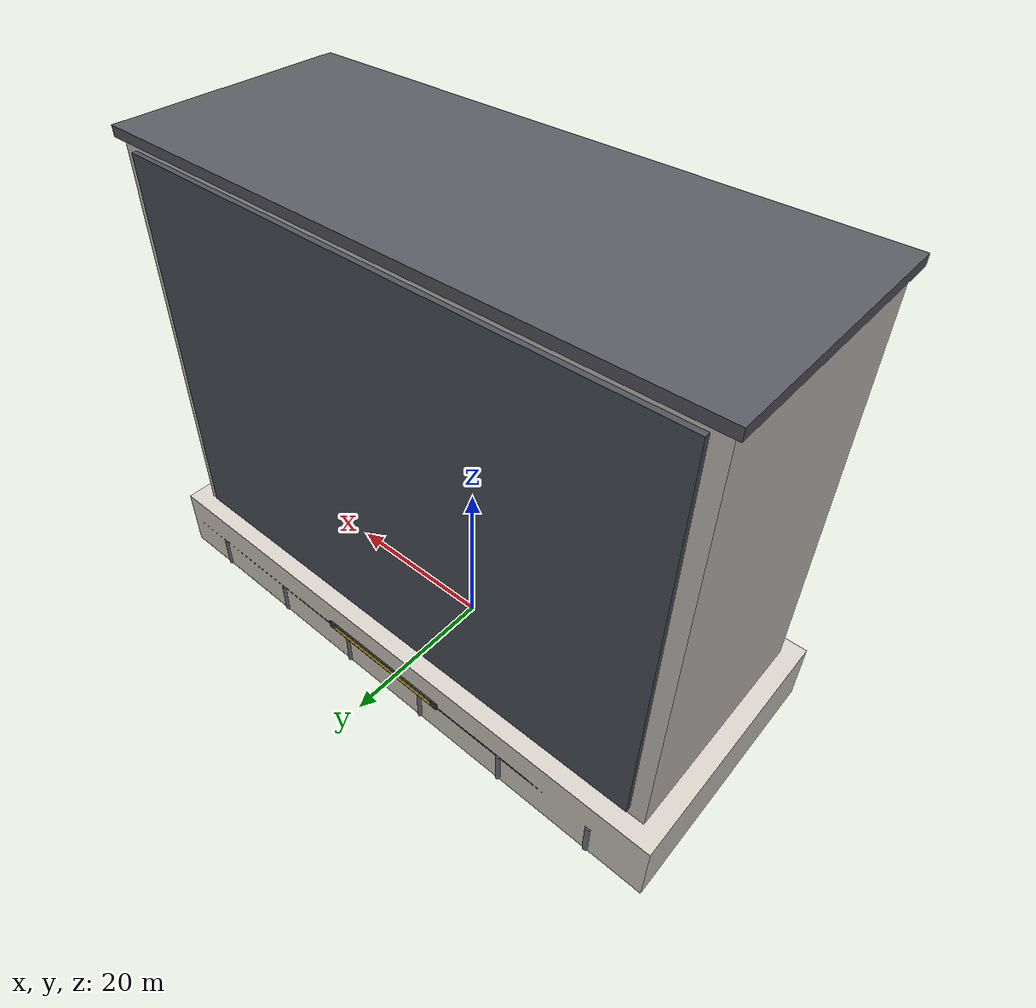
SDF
<?xml version="1.0" ?>
<sdf version="1.8">
  <model name="moon_shadow_building">
    <static>true</static>
    <link name="moon_shadow_link">

      <!-- Collisions -->
      <collision name="podium_col">
        <pose>0 0 4.0 0 0 0</pose>
        <geometry><box><size>74.0 32.0 8.0</size></box></geometry>
      </collision>
      <collision name="tower_col">
        <pose>0 0 33.0 0 0 0</pose>
        <geometry><box><size>70.0 28.0 50.0</size></box></geometry>
      </collision>

      <!-- 1F~2F 崗石大廳基座與商鋪 (Luxury Stone Podium) -->
      <visual name="podium_vis">
        <pose>0 0 4.0 0 0 0</pose>
        <geometry><box><size>74.0 32.0 8.0</size></box></geometry>
        <material>
          <ambient>0.78 0.76 0.72 1</ambient>
          <diffuse>0.84 0.82 0.78 1</diffuse>
        </material>
      </visual>

      <!-- 1F 挑高深凹連續騎樓 (Arcade facing Guanxin Rd: Y = +16m) -->
      <visual name="arcade_floor">
        <pose>0 14.2 0.08 0 0 0</pose>
        <geometry><box><size>72.0 3.6 0.02</size></box></geometry>
        <material><ambient>0.65 0.62 0.60 1</ambient><diffuse>0.72 0.70 0.68 1</diffuse></material>
      </visual>
      <visual name="arcade_ceiling">
        <pose>0 14.2 4.2 0 0 0</pose>
        <geometry><box><size>72.0 3.6 0.25</size></box></geometry>
        <material><ambient>0.28 0.28 0.30 1</ambient><diffuse>0.32 0.32 0.35 1</diffuse></material>
      </visual>

      <!-- 騎樓結構大圓柱列 (沿關新路: 6 根大圓柱) -->
      <visual name="col_1"><pose>-30.0 15.8 2.1 0 0 0</pose><geometry><cylinder><radius>0.4</radius><length>4.2</length></cylinder></geometry><material><ambient>0.38 0.4 0.42 1</ambient><diffuse>0.45 0.48 0.50 1</diffuse></material></visual>
      <visual name="col_2"><pose>-18.0 15.8 2.1 0 0 0</pose><geometry><cylinder><radius>0.4</radius><length>4.2</length></cylinder></geometry><material><ambient>0.38 0.4 0.42 1</ambient><diffuse>0.45 0.48 0.50 1</diffuse></material></visual>
      <visual name="col_3"><pose>-6.0 15.8 2.1 0 0 0</pose><geometry><cylinder><radius>0.4</radius><length>4.2</length></cylinder></geometry><material><ambient>0.38 0.4 0.42 1</ambient><diffuse>0.45 0.48 0.50 1</diffuse></material></visual>
      <visual name="col_4"><pose>6.0 15.8 2.1 0 0 0</pose><geometry><cylinder><radius>0.4</radius><length>4.2</length></cylinder></geometry><material><ambient>0.38 0.4 0.42 1</ambient><diffuse>0.45 0.48 0.50 1</diffuse></material></visual>
      <visual name="col_5"><pose>18.0 15.8 2.1 0 0 0</pose><geometry><cylinder><radius>0.4</radius><length>4.2</length></cylinder></geometry><material><ambient>0.38 0.4 0.42 1</ambient><diffuse>0.45 0.48 0.50 1</diffuse></material></visual>
      <visual name="col_6"><pose>30.0 15.8 2.1 0 0 0</pose><geometry><cylinder><radius>0.4</radius><length>4.2</length></cylinder></geometry><material><ambient>0.38 0.4 0.42 1</ambient><diffuse>0.45 0.48 0.50 1</diffuse></material></visual>

      <!-- 挑高迎賓大廳正門 (Grand Lobby Entrance Portal) -->
      <visual name="lobby_glass">
        <pose>0 12.4 3.0 0 0 0</pose>
        <geometry><box><size>70.0 0.1 5.8</size></box></geometry>
        <material><ambient>0.15 0.25 0.35 0.85</ambient><diffuse>0.20 0.35 0.45 0.85</diffuse><specular>0.9 0.95 1 1</specular></material>
      </visual>
      <!-- 金色社區標誌牌「月影國際會館 MOON SHADOW」 -->
      <visual name="sign_board">
        <pose>0 16.1 4.5 0 0 0</pose>
        <geometry><box><size>18.0 0.2 0.9</size></box></geometry>
        <material><ambient>0.2 0.2 0.22 1</ambient><diffuse>0.25 0.25 0.28 1</diffuse></material>
      </visual>
      <visual name="sign_letters">
        <pose>0 16.22 4.5 0 0 0</pose>
        <geometry><box><size>16.0 0.05 0.6</size></box></geometry>
        <material><ambient>0.85 0.72 0.15 1</ambient><diffuse>0.95 0.80 0.18 1</diffuse><emissive>0.3 0.25 0.05 1</emissive></material>
      </visual>

      <!-- 3F~18F 塔樓主體 (Tower Body: 18F, 58m) -->
      <visual name="tower_body_vis">
        <pose>0 0 33.0 0 0 0</pose>
        <geometry><box><size>69.6 27.6 50.0</size></box></geometry>
        <material>
          <ambient>0.74 0.72 0.70 1</ambient>
          <diffuse>0.80 0.78 0.76 1</diffuse>
        </material>
      </visual>

      <!-- 東向面向關新路之大景觀陽台 (Balconies facing Guanxin Rd) -->
      <visual name="front_balconies_vis">
        <pose>0 14.1 33.0 0 0 0</pose>
        <geometry><box><size>66.0 0.6 48.0</size></box></geometry>
        <material><ambient>0.26 0.28 0.30 1</ambient><diffuse>0.30 0.32 0.35 1</diffuse></material>
      </visual>

      <!-- 頂部造型冠頂女兒牆 (Roof Crown) -->
      <visual name="roof_crown">
        <pose>0 0 58.6 0 0 0</pose>
        <geometry><box><size>71.0 29.0 1.2</size></box></geometry>
        <material><ambient>0.3 0.3 0.32 1</ambient><diffuse>0.35 0.35 0.38 1</diffuse></material>
      </visual>

    </link>
  </model>
</sdf>
